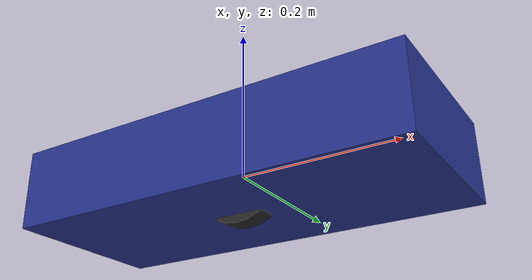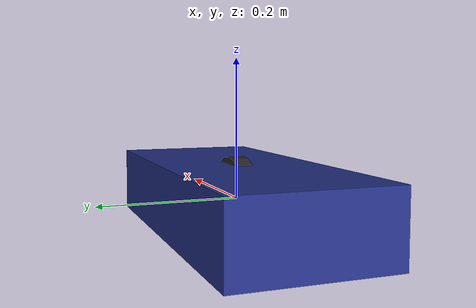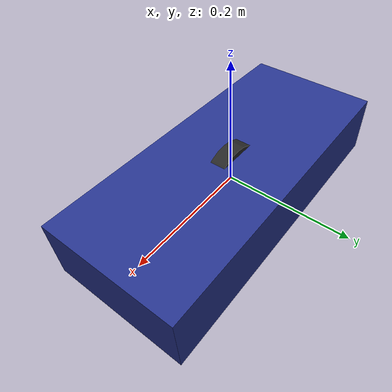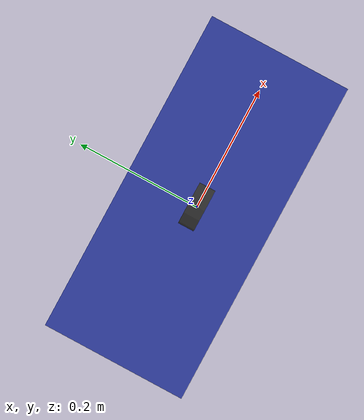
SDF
<?xml version="1.0" ?>
<sdf version="1.6">
  <model name="custom_robot">

    <!-- ===== 基础坐标帧（地面投影点） ===== -->
    <link name="base_footprint"/>

    <joint name="base_joint" type="fixed">
      <parent>base_footprint</parent>
      <child>base_link</child>
      <pose>0 0 0.13 0 0 0</pose>
    </joint>

    <!-- ===== 车体底盘 ===== -->
    <link name="base_link">
      <inertial>
        <mass>3.0</mass>
        <pose>0 0 0 0 0 0</pose>
        <inertia>
          <ixx>0.0146</ixx><ixy>0</ixy><ixz>0</ixz>
          <iyy>0.065</iyy><iyz>0</iyz>
          <izz>0.0746</izz>
        </inertia>
      </inertial>
      <collision name="base_collision">
        <geometry><box><size>0.50 0.22 0.10</size></box></geometry>
        <surface><friction><ode><mu>0.5</mu><mu2>0.5</mu2></ode></friction></surface>
      </collision>
      <visual name="base_visual">
        <geometry><box><size>0.50 0.22 0.10</size></box></geometry>
        <material>
          <ambient>0.1 0.15 0.4 1</ambient>
          <diffuse>0.15 0.2 0.55 1</diffuse>
          <specular>0.15 0.15 0.15 1</specular>
        </material>
      </visual>
    </link>

    <!--  驱动轮 — 后轮（左 / 右），由 diff_drive 插件控制               -->
    <!--  圆柱体绕 X 轴旋转 90°，对称轴从 Z 变为 Y（正常车轮朝向）        -->

    <!-- ----- 左后驱动轮 ----- -->
    <link name="wheel_left_rear_link">
      <inertial>
        <mass>0.15</mass>
        <inertia>
          <ixx>1.43e-4</ixx><ixy>0</ixy><ixz>0</ixz>
          <iyy>2.70e-4</iyy><iyz>0</iyz>
          <izz>1.43e-4</izz>
        </inertia>
      </inertial>
      <collision name="collision">
        <pose>0 0 0 1.5708 0 0</pose>
        <geometry><cylinder><radius>0.06</radius><length>0.025</length></cylinder></geometry>
        <surface><friction><ode><mu>1.0</mu><mu2>1.0</mu2></ode></friction></surface>
      </collision>
      <visual name="visual">
        <pose>0 0 0 1.5708 0 0</pose>
        <geometry><cylinder><radius>0.06</radius><length>0.025</length></cylinder></geometry>
        <material><ambient>0.15 0.15 0.15 1</ambient><diffuse>0.15 0.15 0.15 1</diffuse></material>
      </visual>
    </link>

    <joint name="wheel_left_rear_joint" type="revolute">
      <parent>base_link</parent>
      <child>wheel_left_rear_link</child>
      <axis><xyz>0 1 0</xyz>
        <limit><lower>-1e16</lower><upper>1e16</upper></limit>
        <dynamics><damping>0.05</damping><friction>0.005</friction></dynamics>
      </axis>
      <pose>-0.16 0.13 -0.07 0 0 0</pose>
    </joint>

    <!-- ----- 右后驱动轮 ----- -->
    <link name="wheel_right_rear_link">
      <inertial>
        <mass>0.15</mass>
        <inertia>
          <ixx>1.43e-4</ixx><ixy>0</ixy><ixz>0</ixz>
          <iyy>2.70e-4</iyy><iyz>0</iyz>
          <izz>1.43e-4</izz>
        </inertia>
      </inertial>
      <collision name="collision">
        <pose>0 0 0 1.5708 0 0</pose>
        <geometry><cylinder><radius>0.06</radius><length>0.025</length></cylinder></geometry>
        <surface><friction><ode><mu>1.0</mu><mu2>1.0</mu2></ode></friction></surface>
      </collision>
      <visual name="visual">
        <pose>0 0 0 1.5708 0 0</pose>
        <geometry><cylinder><radius>0.06</radius><length>0.025</length></cylinder></geometry>
        <material><ambient>0.15 0.15 0.15 1</ambient></material>
      </visual>
    </link>

    <joint name="wheel_right_rear_joint" type="revolute">
      <parent>base_link</parent>
      <child>wheel_right_rear_link</child>
      <axis><xyz>0 1 0</xyz>
        <limit><lower>-1e16</lower><upper>1e16</upper></limit>
        <dynamics><damping>0.05</damping><friction>0.005</friction></dynamics>
      </axis>
      <pose>-0.16 -0.13 -0.07 0 0 0</pose>
    </joint>

    <!--  随动轮 — 前轮（左 / 右），被动旋转，无驱动                       -->

    <!-- ----- 左前随动轮 ----- -->
    <link name="wheel_left_front_link">
      <inertial>
        <mass>0.12</mass>
        <inertia>
          <ixx>1.14e-4</ixx><ixy>0</ixy><ixz>0</ixz>
          <iyy>2.16e-4</iyy><iyz>0</iyz>
          <izz>1.14e-4</izz>
        </inertia>
      </inertial>
      <collision name="collision">
        <pose>0 0 0 1.5708 0 0</pose>
        <geometry><cylinder><radius>0.06</radius><length>0.025</length></cylinder></geometry>
        <surface><friction><ode><mu>0.5</mu><mu2>0.5</mu2></ode></friction></surface>
      </collision>
      <visual name="visual">
        <pose>0 0 0 1.5708 0 0</pose>
        <geometry><cylinder><radius>0.06</radius><length>0.025</length></cylinder></geometry>
        <material><ambient>0.15 0.15 0.15 1</ambient></material>
      </visual>
    </link>

    <joint name="wheel_left_front_joint" type="revolute">
      <parent>base_link</parent>
      <child>wheel_left_front_link</child>
      <axis><xyz>0 1 0</xyz>
        <limit><lower>-1e16</lower><upper>1e16</upper></limit>
        <dynamics><damping>0.05</damping><friction>0.005</friction></dynamics>
      </axis>
      <pose>0.16 0.13 -0.07 0 0 0</pose>
    </joint>

    <!-- ----- 右前随动轮 ----- -->
    <link name="wheel_right_front_link">
      <inertial>
        <mass>0.12</mass>
        <inertia>
          <ixx>1.14e-4</ixx><ixy>0</ixy><ixz>0</ixz>
          <iyy>2.16e-4</iyy><iyz>0</iyz>
          <izz>1.14e-4</izz>
        </inertia>
      </inertial>
      <collision name="collision">
        <pose>0 0 0 1.5708 0 0</pose>
        <geometry><cylinder><radius>0.06</radius><length>0.025</length></cylinder></geometry>
        <surface><friction><ode><mu>0.5</mu><mu2>0.5</mu2></ode></friction></surface>
      </collision>
      <visual name="visual">
        <pose>0 0 0 1.5708 0 0</pose>
        <geometry><cylinder><radius>0.06</radius><length>0.025</length></cylinder></geometry>
        <material><ambient>0.15 0.15 0.15 1</ambient></material>
      </visual>
    </link>

    <joint name="wheel_right_front_joint" type="revolute">
      <parent>base_link</parent>
      <child>wheel_right_front_link</child>
      <axis><xyz>0 1 0</xyz>
        <limit><lower>-1e16</lower><upper>1e16</upper></limit>
        <dynamics><damping>0.05</damping><friction>0.005</friction></dynamics>
      </axis>
      <pose>0.16 -0.13 -0.07 0 0 0</pose>
    </joint>

    <!--  传感器平台                                                     -->

    <!-- ----- 车顶 LiDAR 支架（初始关闭） ----- -->
    <link name="lidar_link">
      <inertial>
        <mass>0.01</mass>
        <inertia>
          <ixx>1e-6</ixx><ixy>0</ixy><ixz>0</ixz>
          <iyy>1e-6</iyy><iyz>0</iyz>
          <izz>1e-6</izz>
        </inertia>
      </inertial>
      <collision name="collision">
        <geometry>
          <cylinder><radius>0.04</radius><length>0.03</length></cylinder>
        </geometry>
      </collision>
      <visual name="visual">
        <geometry>
          <cylinder><radius>0.04</radius><length>0.03</length></cylinder>
        </geometry>
        <material>
          <ambient>0.8 0.2 0.2 1</ambient>
          <diffuse>0.8 0.2 0.2 1</diffuse>
        </material>
      </visual>

      <sensor name="lidar_sensor" type="ray">
        <pose>0 0 0 0 0 0</pose>
        <always_on>0</always_on>
        <visualize>false</visualize>
        <update_rate>10</update_rate>
        <ray>
          <scan>
            <horizontal>
              <samples>360</samples>
              <resolution>1</resolution>
              <min_angle>-3.14159</min_angle>
              <max_angle>3.14159</max_angle>
            </horizontal>
          </scan>
          <range>
            <min>0.12</min>
            <max>10.0</max>
            <resolution>0.01</resolution>
          </range>
          <noise>
            <type>gaussian</type>
            <mean>0.0</mean>
            <stddev>0.01</stddev>
          </noise>
        </ray>
        <plugin name="gpu_lidar_plugin" filename="libgazebo_ros_ray_sensor.so">
          <ros>
            <namespace>robot</namespace>
            <argument>~/out:=scan</argument>
          </ros>
          <output_type>sensor_msgs/LaserScan</output_type>
          <frame_name>lidar_link</frame_name>
        </plugin>
      </sensor>
    </link>

    <joint name="lidar_joint" type="fixed">
      <parent>base_link</parent>
      <child>lidar_link</child>
      <pose>0 0 0.08 0 0 0</pose>
    </joint>

    <!-- ----- 内置 IMU ----- -->
    <link name="imu_link">
      <inertial>
        <mass>0.001</mass>
        <inertia>
          <ixx>1e-6</ixx><ixy>0</ixy><ixz>0</ixz>
          <iyy>1e-6</iyy><iyz>0</iyz>
          <izz>1e-6</izz>
        </inertia>
      </inertial>
      <sensor name="imu_sensor" type="imu">
        <always_on>1</always_on>
        <update_rate>200</update_rate>
        <imu>
          <angular_velocity>
            <x>
              <noise type="gaussian"><mean>0.0</mean><stddev>0.00017</stddev></noise>
            </x>
            <y>
              <noise type="gaussian"><mean>0.0</mean><stddev>0.00017</stddev></noise>
            </y>
            <z>
              <noise type="gaussian"><mean>0.0</mean><stddev>0.00017</stddev></noise>
            </z>
          </angular_velocity>
          <linear_acceleration>
            <x>
              <noise type="gaussian"><mean>0.0</mean><stddev>0.001</stddev></noise>
            </x>
            <y>
              <noise type="gaussian"><mean>0.0</mean><stddev>0.001</stddev></noise>
            </y>
            <z>
              <noise type="gaussian"><mean>0.0</mean><stddev>0.001</stddev></noise>
            </z>
          </linear_acceleration>
        </imu>
        <plugin name="imu_plugin" filename="libgazebo_ros_imu_sensor.so">
          <ros>
            <namespace>robot</namespace>
          </ros>
          <frame_name>imu_link</frame_name>
        </plugin>
      </sensor>
    </link>

    <joint name="imu_joint" type="fixed">
      <parent>base_link</parent>
      <child>imu_link</child>
      <pose>0 0 -0.02 0 0 0</pose>
    </joint>

    <!-- ----- 前向 RGB 摄像头 ----- -->
    <link name="camera_link">
      <inertial>
        <mass>0.005</mass>
        <inertia>
          <ixx>1e-6</ixx><ixy>0</ixy><ixz>0</ixz>
          <iyy>1e-6</iyy><iyz>0</iyz>
          <izz>1e-6</izz>
        </inertia>
      </inertial>
      <collision name="collision">
        <geometry><box><size>0.02 0.04 0.02</size></box></geometry>
      </collision>
      <visual name="visual">
        <geometry><box><size>0.02 0.04 0.02</size></box></geometry>
        <material>
          <ambient>0 0.7 0 1</ambient>
          <diffuse>0 0.7 0 1</diffuse>
        </material>
      </visual>
      <sensor name="camera_sensor" type="camera">
        <always_on>1</always_on>
        <update_rate>30</update_rate>
        <visualize>false</visualize>
        <camera>
          <horizontal_fov>1.047</horizontal_fov>
          <image>
            <width>640</width>
            <height>480</height>
            <format>R8G8B8</format>
          </image>
          <clip>
            <near>0.1</near>
            <far>100</far>
          </clip>
          <noise>
            <type>gaussian</type>
            <mean>0.0</mean>
            <stddev>0.007</stddev>
          </noise>
        </camera>
        <plugin name="camera_plugin" filename="libgazebo_ros_camera.so">
          <ros>
            <namespace>robot</namespace>
          </ros>
          <frame_name>camera_link</frame_name>
        </plugin>
      </sensor>
    </link>

    <joint name="camera_joint" type="fixed">
      <parent>base_link</parent>
      <child>camera_link</child>
      <pose>0.23 0 0.06 0 0 0</pose>
    </joint>

    <!--  Gazebo ROS 差分驱动插件 — 后轮驱动                              -->
    <plugin name="diff_drive" filename="libgazebo_ros_diff_drive.so">
      <ros>
        <namespace>robot</namespace>
      </ros>
      <update_rate>30</update_rate>
      <left_joint>wheel_left_rear_joint</left_joint>
      <right_joint>wheel_right_rear_joint</right_joint>
      <wheel_separation>0.26</wheel_separation>
      <wheel_diameter>0.12</wheel_diameter>
      <max_wheel_torque>8.0</max_wheel_torque>
      <max_wheel_acceleration>0.5</max_wheel_acceleration>
      <command_topic>cmd_vel</command_topic>
      <odometry_topic>odom</odometry_topic>
      <odometry_frame>odom</odometry_frame>
      <robot_base_frame>base_footprint</robot_base_frame>
      <publish_odom_tf>true</publish_odom_tf>
      <publish_wheel_tf>false</publish_wheel_tf>
      <publishTf>1</publishTf>
    </plugin>

    <!-- ===== 关节状态发布插件 — 发布全部四个轮子的状态 ===== -->
    <plugin name="joint_state_publisher"
            filename="libgazebo_ros_joint_state_publisher.so">
      <ros>
        <namespace>robot</namespace>
      </ros>
      <update_rate>30</update_rate>
      <joint_name>wheel_left_rear_joint</joint_name>
      <joint_name>wheel_right_rear_joint</joint_name>
      <joint_name>wheel_left_front_joint</joint_name>
      <joint_name>wheel_right_front_joint</joint_name>
    </plugin>

  </model>
</sdf>
